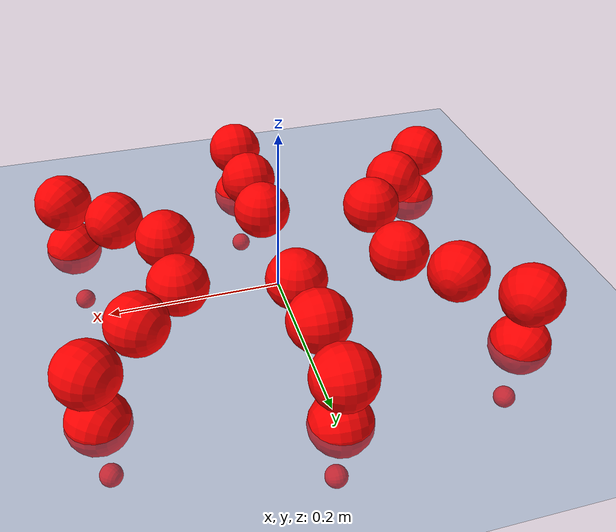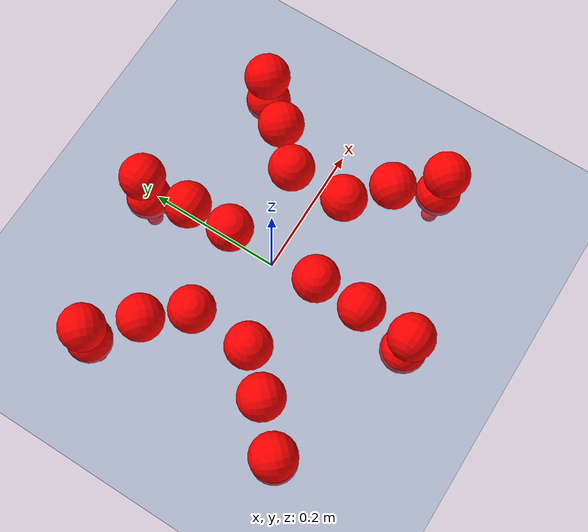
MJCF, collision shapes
<mujoco model="Golem">
  <compiler angle="radian" assetdir="assets" balanceinertia="true" inertiafromgeom="false"/>

  <option timestep="0.005" density="1.2" viscosity="2e-05"/>

  <size nkey="1"/>

  <visual>
    <quality shadowsize="8192"/>
    <map shadowclip="0.5"/>
  </visual>

  <default>
    <default class="/">
      <joint armature="0.01" damping="0.01" frictionloss="0.01"/>
      <geom contype="0" conaffinity="0" group="1" solref="-1000 -80"/>
      <site size="0.01 0.005 0.005" group="5"/>
      <general forcelimited="true" biastype="affine" gainprm="25" biasprm="0 -25 -0.5"/>
      <default class="visual">
        <geom type="mesh" group="2"/>
      </default>
      <default class="collision">
        <geom group="3"/>
      </default>
      <default class="foot">
        <geom size="0.01 0 0" condim="6" group="4" priority="1" solimp="0.015 1 0.01"/>
      </default>
      <default class="reward_collision_sphere">
        <geom group="5" rgba="1 0 0 1"/>
      </default>
    </default>
  </default>

  <asset>
    <texture type="skybox" colorspace="auto" name="//unnamed_texture_0" builtin="gradient" rgb1="0.95 0.95 0.95" rgb2="0.95 0.95 0.95" width="100" height="600"/>
    <texture type="2d" colorspace="auto" name="texplane" builtin="checker" rgb1="0.345 0.575 0.748" rgb2="0.345 0.575 0.748" markrgb="1 1 1" width="512" height="512"/>
    <material name="MatPlane" class="/" texture="texplane" texuniform="true" texrepeat="2 2" specular="0.9"/>
    <mesh name="body" class="/" file="body.stl" scale="0.001 0.001 0.001"/>
    <mesh name="coxa" class="/" file="coxa.stl" scale="0.001 0.001 0.001"/>
    <mesh name="femur" class="/" file="femur.stl" scale="0.001 0.001 0.001"/>
    <mesh name="tibia" class="/" file="tibia.stl" scale="0.001 0.001 0.001"/>
    <mesh name="tarsus" class="/" file="tarsus.stl" scale="0.001 0.001 0.001"/>
  </asset>

  <worldbody>
    <geom name="floor" class="/" size="100 100 0.125" type="plane" group="0" material="MatPlane"/>
    <light name="toplight_shadow" class="/" pos="0 0 5" dir="0.0990148 0.0990148 -0.990148" type="directional" ambient="0.04 0.04 0.04" diffuse="0.55 0.55 0.55" specular="0.12 0.12 0.12"/>
    <light name="toplight_fill" class="/" pos="0 0 5" dir="0.0990148 0.0990148 -0.990148" type="directional" castshadow="false" ambient="0.04 0.04 0.04" diffuse="0.3 0.3 0.3" specular="0.08 0.08 0.08"/>
    <body name="trunk" pos="-0.00106193 1.10877e-05 -0.00272814" quat="1 7.95206e-05 0.000391539 0.000434686">
      <inertial pos="0.00063733 0.00223122 -0.00524146" quat="0.999993 -0.00353361 -0.000718956 -0.00087682" mass="2.37975" diaginertia="0.00361428 0.00223946 0.011152"/>
      <joint name="//unnamed_joint_0" type="free"/>
      <geom name="//unnamed_geom_1" class="/" pos="0 0 0.0650556" quat="1 0 0 0" type="mesh" rgba="0.9 0.9 0.9 1" mesh="body"/>
      <site name="imu" class="/" pos="0.100372 -0.000657747 0.115354" size="0.00855605"/>
      <camera name="track" class="/" pos="0 -1.47918 0" quat="0.707107 0.707107 0 0" mode="trackcom"/>
      <camera name="ego_camera" class="/" pos="0.105395 0 0.101649" quat="-0.5 -0.5 0.5 0.5"/>
      <body name="coxa_RR" pos="-0.146482 -0.0620674 0.0650335" quat="0.381815 -0.000432985 0.000594368 -0.924239">
        <inertial pos="-0.00269681 -0.00192811 -0.000471168" quat="0.999905 -0.00106034 0.0136081 0.00172216" mass="0.125729" diaginertia="0.00348374 0.00217927 0.0104498"/>
        <joint name="coxa_joint_RR" class="/" pos="0 0 0" axis="0.00698352 0.00117906 -0.999975" stiffness="0.00017127" range="-3.16244 3.11735" armature="0.00863906" damping="0.0145178" frictionloss="0.00973377"/>
        <geom name="//unnamed_geom_2" class="/" type="mesh" rgba="0.2 0.2 0.2 1" mesh="coxa"/>
        <geom name="//unnamed_geom_3" class="reward_collision_sphere" size="0.0342242" pos="-0.024322 0 0"/>
        <body name="femur_RR" pos="0.0486016 0.0019719 -0.000107682" quat="0.499636 -0.499964 0.500173 0.500227">
          <inertial pos="0.000519335 -0.000801548 0.00269902" quat="1 -0.000129286 -7.04875e-05 0.00064485" mass="0.125435" diaginertia="0.00350111 0.00221644 0.0104964"/>
          <joint name="femur_joint_RR" class="/" pos="0 0 0" axis="0.0116799 -0.00587823 -0.999915" range="-3.1465 3.13357" armature="0.00804424" damping="0" frictionloss="0.00862753"/>
          <geom name="//unnamed_geom_4" class="/" type="mesh" rgba="0.9 0.9 0.9 1" mesh="femur"/>
          <geom name="//unnamed_geom_5" class="reward_collision_sphere" size="0.0342242"/>
          <body name="tibia_RR" pos="0.00111783 -0.0804137 -0.00148513" quat="2.19485e-05 1 -5.46448e-06 2.36807e-05">
            <inertial pos="-0.00117934 0.0028224 -0.00273674" quat="0.999905 -0.0133242 0.00276973 0.0022578" mass="0.123897" diaginertia="0.00332493 0.00218818 0.0105288"/>
            <joint name="tibia_joint_RR" class="/" pos="0 0 0" axis="0.00110887 -0.00268119 0.999996" stiffness="0.000691121" range="-3.13986 3.09018" armature="0.00837765" damping="0.0113878" frictionloss="0.00813316"/>
            <geom name="//unnamed_geom_6" class="/" type="mesh" rgba="0.2 0.2 0.2 1" mesh="tibia"/>
            <geom name="//unnamed_geom_7" class="reward_collision_sphere" size="0.0342242"/>
            <body name="tarsus_RR" pos="0.0729373 -0.00269476 -0.00243313" quat="0.999999 0.00104053 0.000510169 0.000791033">
              <inertial pos="0.0486675 -0.00229523 0.000660024" quat="0.498102 0.497159 0.501668 0.503048" mass="0.123807" diaginertia="0.00351736 0.00234032 0.011166"/>
              <joint name="tarsus_joint_RR" class="/" pos="0 0 0" axis="-0.000452619 -0.00271575 0.999996" range="-3.14076 3.15348" armature="0.00842075" damping="0" frictionloss="0.00901749"/>
              <geom name="//unnamed_geom_8" class="/" type="mesh" rgba="0.9 0.9 0.9 1" mesh="tarsus"/>
              <geom name="foot_1" class="foot" size="0.00872952" pos="0.090802 0 0" quat="0 -0.707107 0 0.707107"/>
              <geom name="//unnamed_geom_10" class="reward_collision_sphere" size="0.0342242"/>
              <geom name="//unnamed_geom_11" class="reward_collision_sphere" size="0.0128341" pos="0.0871537 0 0"/>
              <site name="foot_1" class="foot" pos="0.090802 0 0" quat="0 -0.707107 0 0.707107" size="0.00855605"/>
            </body>
          </body>
        </body>
      </body>
      <body name="coxa_RM" pos="0.00195779 -0.0969171 0.0634798" quat="0.70744 0.000443809 0.000323615 -0.706774">
        <inertial pos="-7.9456e-05 -0.00194132 -0.00218433" quat="0.999999 -0.000157733 -0.00162165 -3.82994e-05" mass="0.120796" diaginertia="0.00328296 0.00206899 0.0105748"/>
        <joint name="coxa_joint_RM" class="/" pos="0 0 0" axis="-0.0036112 0.00192698 -0.999992" stiffness="0.00252432" range="-3.13871 3.16016" armature="0.00814187" damping="0.0176551" frictionloss="0.00944082"/>
        <geom name="//unnamed_geom_12" class="/" type="mesh" rgba="0.2 0.2 0.2 1" mesh="coxa"/>
        <geom name="//unnamed_geom_13" class="reward_collision_sphere" size="0.0342242" pos="-0.024322 0 0"/>
        <body name="femur_RM" pos="0.0499764 -0.000968802 -0.000538301" quat="0.499251 -0.500256 0.49981 0.500681">
          <inertial pos="0.000848668 -0.00219892 0.000253002" quat="0.99991 0.00278133 0.0112347 0.00677277" mass="0.124581" diaginertia="0.00362034 0.0021823 0.0108318"/>
          <joint name="femur_joint_RM" class="/" pos="0 0 0" axis="0.000876064 -0.000414865 -1" stiffness="0.000658837" range="-3.1945 3.19391" armature="0.00968231" damping="0.026974" frictionloss="0.0084947"/>
          <geom name="//unnamed_geom_14" class="/" type="mesh" rgba="0.9 0.9 0.9 1" mesh="femur"/>
          <geom name="//unnamed_geom_15" class="reward_collision_sphere" size="0.0342242"/>
          <body name="tibia_RM" pos="-0.000553818 -0.0803022 -0.000537675" quat="1.75257e-05 1 -1.31294e-05 1.5667e-05">
            <inertial pos="-2.84402e-05 0.000155329 -0.00266291" quat="0.999909 -0.00592781 0.00987226 0.00698796" mass="0.116831" diaginertia="0.00339962 0.00213711 0.0108434"/>
            <joint name="tibia_joint_RM" class="/" pos="0 0 0" axis="-0.0038084 0.00356396 0.999986" stiffness="0.00811978" range="-3.19391 3.08465" armature="0.00734627" damping="0" frictionloss="0.00851725"/>
            <geom name="//unnamed_geom_16" class="/" type="mesh" rgba="0.2 0.2 0.2 1" mesh="tibia"/>
            <geom name="//unnamed_geom_17" class="reward_collision_sphere" size="0.0342242"/>
            <body name="tarsus_RM" pos="0.0712461 -0.00188509 0.00307983" quat="1 0.000414456 0.000158787 5.29925e-05">
              <inertial pos="0.047901 0.000780374 -0.000558637" quat="0.497818 0.501539 0.491554 0.508931" mass="0.124988" diaginertia="0.00354024 0.00221421 0.0109611"/>
              <joint name="tarsus_joint_RM" class="/" pos="0 0 0" axis="-0.000331038 0.00525555 0.999986" range="-3.14919 3.18465" armature="0.00860969" damping="0" frictionloss="0.00899734"/>
              <geom name="//unnamed_geom_18" class="/" type="mesh" rgba="0.9 0.9 0.9 1" mesh="tarsus"/>
              <geom name="foot_2" class="foot" size="0.00768575" pos="0.090802 0 0" quat="0 -0.707107 0 0.707107"/>
              <geom name="//unnamed_geom_20" class="reward_collision_sphere" size="0.0342242"/>
              <geom name="//unnamed_geom_21" class="reward_collision_sphere" size="0.0128341" pos="0.0871537 0 0"/>
              <site name="foot_2" class="foot" pos="0.090802 0 0" quat="0 -0.707107 0 0.707107" size="0.00855605"/>
            </body>
          </body>
        </body>
      </body>
      <body name="coxa_RF" pos="0.142793 -0.0603374 0.0642575" quat="0.923974 -0.000685351 -0.00116224 -0.382453">
        <inertial pos="0.00273913 -0.00274423 0.0013589" quat="0.999991 -0.00044538 -0.00347726 0.00243823" mass="0.126785" diaginertia="0.00361873 0.00222672 0.0108169"/>
        <joint name="coxa_joint_RF" class="/" pos="0 0 0" axis="-0.00849057 -0.00611881 -0.999945" range="-3.13511 3.16104" armature="0.00843322" damping="0" frictionloss="0.00832412"/>
        <geom name="//unnamed_geom_22" class="/" type="mesh" rgba="0.2 0.2 0.2 1" mesh="coxa"/>
        <geom name="//unnamed_geom_23" class="reward_collision_sphere" size="0.0342242" pos="-0.024322 0 0"/>
        <body name="femur_RF" pos="0.0482815 0.00196212 0.00210868" quat="0.499785 -0.500876 0.500099 0.499239">
          <inertial pos="-0.000843608 0.00084248 -0.000858293" quat="0.99996 -0.0023228 0.0040402 -0.00759859" mass="0.123377" diaginertia="0.00346085 0.00215666 0.0107473"/>
          <joint name="femur_joint_RF" class="/" pos="0 0 0" axis="0.00123972 0.00136905 -0.999998" range="-3.11283 3.17124" armature="0.00910553" damping="0.00895093" frictionloss="0.00841653"/>
          <geom name="//unnamed_geom_24" class="/" type="mesh" rgba="0.9 0.9 0.9 1" mesh="femur"/>
          <geom name="//unnamed_geom_25" class="reward_collision_sphere" size="0.0342242"/>
          <body name="tibia_RF" pos="0.00176196 -0.0805077 -0.000549536" quat="0.000571008 1 1.86385e-05 -3.37459e-05">
            <inertial pos="0.00102242 -0.00254772 0.000140491" quat="0.999993 0.00370871 7.2458e-05 5.92816e-05" mass="0.122872" diaginertia="0.00340244 0.00214 0.0108842"/>
            <joint name="tibia_joint_RF" class="/" pos="0 0 0" axis="0.00139998 -0.00197509 0.999997" stiffness="0.00636237" range="-3.14668 3.08322" armature="0.00860464" damping="0" frictionloss="0.00850874"/>
            <geom name="//unnamed_geom_26" class="/" type="mesh" rgba="0.2 0.2 0.2 1" mesh="tibia"/>
            <geom name="//unnamed_geom_27" class="reward_collision_sphere" size="0.0342242"/>
            <body name="tarsus_RF" pos="0.0684267 -0.0030481 -0.000173933" quat="0.999999 0.000292301 0.00111213 -0.000156149">
              <inertial pos="0.0481776 -2.1169e-05 -0.000845996" quat="0.499826 0.500101 0.500077 0.499996" mass="0.126608" diaginertia="0.003526 0.00228413 0.0108603"/>
              <joint name="tarsus_joint_RF" class="/" pos="0 0 0" axis="0.00131705 0.00300867 0.999995" range="-3.15131 3.15749" armature="0.00812249" damping="0" frictionloss="0.00899805"/>
              <geom name="//unnamed_geom_28" class="/" type="mesh" rgba="0.9 0.9 0.9 1" mesh="tarsus"/>
              <geom name="foot_3" class="foot" size="0.00840929" pos="0.090802 0 0" quat="0 -0.707107 0 0.707107"/>
              <geom name="//unnamed_geom_30" class="reward_collision_sphere" size="0.0342242"/>
              <geom name="//unnamed_geom_31" class="reward_collision_sphere" size="0.0128341" pos="0.0871537 0 0"/>
              <site name="foot_3" class="foot" pos="0.090802 0 0" quat="0 -0.707107 0 0.707107" size="0.00855605"/>
            </body>
          </body>
        </body>
      </body>
      <body name="coxa_LR" pos="-0.144695 0.0663157 0.063319" quat="0.382592 -5.59741e-06 -3.25543e-05 0.923917">
        <inertial pos="0.000535861 -0.00055766 -0.00217832" quat="0.999927 -0.000831356 0.00689177 -0.00984615" mass="0.120345" diaginertia="0.00339438 0.00221307 0.0106375"/>
        <joint name="coxa_joint_LR" class="/" pos="0 0 0" axis="-0.00794253 -0.00504829 -0.999956" stiffness="0.0090214" range="-3.14552 3.16049" armature="0.00874129" damping="0.0151344" frictionloss="0.00966837"/>
        <geom name="//unnamed_geom_32" class="/" type="mesh" rgba="0.2 0.2 0.2 1" mesh="coxa"/>
        <geom name="//unnamed_geom_33" class="reward_collision_sphere" size="0.0342242" pos="-0.024322 0 0"/>
        <body name="femur_LR" pos="0.0468689 -0.00352841 0.000905493" quat="0.499823 -0.500573 0.500403 0.4992">
          <inertial pos="0.000184946 -0.00104354 -0.00275078" quat="0.999974 -0.00174463 -0.00129618 0.00690929" mass="0.123272" diaginertia="0.00337858 0.0021339 0.0104057"/>
          <joint name="femur_joint_LR" class="/" pos="0 0 0" axis="0.00584782 0.0109773 0.999923" range="-3.14215 3.142" armature="0.00942038" damping="0.013566" frictionloss="0.00898774"/>
          <geom name="//unnamed_geom_34" class="/" type="mesh" rgba="0.9 0.9 0.9 1" mesh="femur"/>
          <geom name="//unnamed_geom_35" class="reward_collision_sphere" size="0.0342242"/>
          <body name="tibia_LR" pos="-0.00247188 -0.0808473 -0.00305983" quat="0.000107373 1 9.09607e-05 0.000164522">
            <inertial pos="0.000681112 0.00285508 0.000327178" quat="0.999991 -0.00157784 0.00377584 0.00129946" mass="0.128409" diaginertia="0.00345861 0.00224868 0.0114773"/>
            <joint name="tibia_joint_LR" class="/" pos="0 0 0" axis="-0.0073192 -0.00834733 -0.999938" stiffness="0.00134944" range="-3.08693 3.09274" armature="0.00954489" damping="0" frictionloss="0.00953681"/>
            <geom name="//unnamed_geom_36" class="/" type="mesh" rgba="0.2 0.2 0.2 1" mesh="tibia"/>
            <geom name="//unnamed_geom_37" class="reward_collision_sphere" size="0.0342242"/>
            <body name="tarsus_LR" pos="0.0709707 0.000884159 -1.29858e-05" quat="1 0.000101813 -0.000237231 0.000234937">
              <inertial pos="0.0514254 0.001407 -0.00207437" quat="0.500004 0.499631 0.500584 0.49978" mass="0.123961" diaginertia="0.00358504 0.00222928 0.0106506"/>
              <joint name="tarsus_joint_LR" class="/" pos="0 0 0" axis="-0.0032536 0.00465837 -0.999984" range="-3.10098 3.10528" armature="0.00743811" damping="0.0183851" frictionloss="0.0085754"/>
              <geom name="//unnamed_geom_38" class="/" type="mesh" rgba="0.9 0.9 0.9 1" mesh="tarsus"/>
              <geom name="foot_4" class="foot" size="0.00863354" pos="0.090802 0 0" quat="0.707107 0 -0.707107 0"/>
              <geom name="//unnamed_geom_40" class="reward_collision_sphere" size="0.0342242"/>
              <geom name="//unnamed_geom_41" class="reward_collision_sphere" size="0.0128341" pos="0.0871537 0 0"/>
              <site name="foot_4" class="foot" pos="0.090802 0 0" quat="0.707107 0 -0.707107 0" size="0.00855605"/>
            </body>
          </body>
        </body>
      </body>
      <body name="coxa_LM" pos="1.66459e-06 0.0935993 0.0657884" quat="0.707225 -0.000175977 -1.43849e-05 0.706988">
        <inertial pos="0.000174546 -0.00276327 0.00240884" quat="0.999981 0.00102421 -0.00167528 0.00578299" mass="0.129736" diaginertia="0.00353284 0.00224034 0.0109913"/>
        <joint name="coxa_joint_LM" class="/" pos="0 0 0" axis="7.55709e-06 -0.0132928 -0.999912" range="-3.13641 3.13632" armature="0.00745256" damping="0.0145161" frictionloss="0.00864886"/>
        <geom name="//unnamed_geom_42" class="/" type="mesh" rgba="0.2 0.2 0.2 1" mesh="coxa"/>
        <geom name="//unnamed_geom_43" class="reward_collision_sphere" size="0.0342242" pos="-0.024322 0 0"/>
        <body name="femur_LM" pos="0.045194 0.00292791 0.000740166" quat="0.499888 -0.500042 0.49991 0.50016">
          <inertial pos="-0.00256371 0.00174481 -0.00219321" quat="1 -0.00035347 0.000220203 -0.00049919" mass="0.122233" diaginertia="0.00339178 0.00218296 0.010388"/>
          <joint name="femur_joint_LM" class="/" pos="0 0 0" axis="-0.0155078 0.00259425 0.999876" stiffness="0.00892152" range="-3.14126 3.14299" armature="0.00897418" damping="0" frictionloss="0.00968415"/>
          <geom name="//unnamed_geom_44" class="/" type="mesh" rgba="0.9 0.9 0.9 1" mesh="femur"/>
          <geom name="//unnamed_geom_45" class="reward_collision_sphere" size="0.0342242"/>
          <body name="tibia_LM" pos="0.000959049 -0.0791977 -0.000720481" quat="-4.98192e-05 1 -7.5156e-05 0.00017201">
            <inertial pos="-0.00104341 -0.000282928 0.00255255" quat="0.999913 0.000178695 -0.0125031 0.00424105" mass="0.122685" diaginertia="0.00350837 0.0022518 0.0106102"/>
            <joint name="tibia_joint_LM" class="/" pos="0 0 0" axis="0.0023008 -0.00199013 -0.999995" stiffness="0.00816067" range="-3.15819 3.19424" armature="0.0080046" damping="0" frictionloss="0.00894577"/>
            <geom name="//unnamed_geom_46" class="/" type="mesh" rgba="0.2 0.2 0.2 1" mesh="tibia"/>
            <geom name="//unnamed_geom_47" class="reward_collision_sphere" size="0.0342242"/>
            <body name="tarsus_LM" pos="0.0708092 -0.00340931 -0.00143466" quat="1 6.46672e-06 4.56273e-06 5.0592e-06">
              <inertial pos="0.0513733 0.000714379 0.000162634" quat="0.499987 0.499641 0.50019 0.500181" mass="0.124892" diaginertia="0.00353824 0.0022302 0.0112167"/>
              <joint name="tarsus_joint_LM" class="/" pos="0 0 0" axis="-0.00156159 -0.00292632 -0.999994" range="-3.13599 3.13156" armature="0.00881061" damping="0" frictionloss="0.00879079"/>
              <geom name="//unnamed_geom_48" class="/" type="mesh" rgba="0.9 0.9 0.9 1" mesh="tarsus"/>
              <geom name="foot_5" class="foot" size="0.00848862" pos="0.090802 0 0" quat="0.707107 0 -0.707107 0"/>
              <geom name="//unnamed_geom_50" class="reward_collision_sphere" size="0.0342242"/>
              <geom name="//unnamed_geom_51" class="reward_collision_sphere" size="0.0128341" pos="0.0871537 0 0"/>
              <site name="foot_5" class="foot" pos="0.090802 0 0" quat="0.707107 0 -0.707107 0" size="0.00855605"/>
            </body>
          </body>
        </body>
      </body>
      <body name="coxa_LF" pos="0.141738 0.0615134 0.0654622" quat="0.923736 0.000139487 -0.000353257 0.383029">
        <inertial pos="0.00277828 0.000385672 0.000304011" quat="0.999908 -0.00776929 -0.00523642 -0.00983884" mass="0.125831" diaginertia="0.00361196 0.00219631 0.0108526"/>
        <joint name="coxa_joint_LF" class="/" pos="0 0 0" axis="-0.000653817 0.0013179 -0.999999" range="-3.1606 3.08314" armature="0.00799084" damping="0.0123966" frictionloss="0.00873805"/>
        <geom name="//unnamed_geom_52" class="/" type="mesh" rgba="0.2 0.2 0.2 1" mesh="coxa"/>
        <geom name="//unnamed_geom_53" class="reward_collision_sphere" size="0.0342242" pos="-0.024322 0 0"/>
        <body name="femur_LF" pos="0.0460567 -0.000689052 -0.000195711" quat="0.500129 -0.499996 0.500066 0.49981">
          <inertial pos="-0.00273269 0.00230155 -0.000667953" quat="0.999995 0.00079066 0.00171461 0.00249149" mass="0.125564" diaginertia="0.00338337 0.0022026 0.0108781"/>
          <joint name="femur_joint_LF" class="/" pos="0 0 0" axis="0.00907899 -0.0117645 0.99989" range="-3.19511 3.13546" armature="0.00848267" damping="0" frictionloss="0.00859861"/>
          <geom name="//unnamed_geom_54" class="/" type="mesh" rgba="0.9 0.9 0.9 1" mesh="femur"/>
          <geom name="//unnamed_geom_55" class="reward_collision_sphere" size="0.0342242"/>
          <body name="tibia_LF" pos="-0.00182229 -0.0793369 0.00293703" quat="-5.25254e-05 0.999999 0.000755742 0.000933266">
            <inertial pos="-0.00269174 1.11978e-05 0.000854875" quat="0.999933 -0.00556213 0.00907654 0.00457523" mass="0.129235" diaginertia="0.00339963 0.00218522 0.0108355"/>
            <joint name="tibia_joint_LF" class="/" pos="0 0 0" axis="0.00297375 0.00364854 -0.999989" stiffness="0.00230182" range="-3.13531 3.15698" armature="0.00865767" damping="0.00611944" frictionloss="0.0090146"/>
            <geom name="//unnamed_geom_56" class="/" type="mesh" rgba="0.2 0.2 0.2 1" mesh="tibia"/>
            <geom name="//unnamed_geom_57" class="reward_collision_sphere" size="0.0342242"/>
            <body name="tarsus_LF" pos="0.0716941 -0.00224852 0.00136453" quat="1 -0.000308659 -1.80586e-05 -0.000331886">
              <inertial pos="0.0472023 -0.00021456 -0.00258465" quat="0.497533 0.502418 0.501219 0.498815" mass="0.116965" diaginertia="0.00336352 0.00214423 0.0105162"/>
              <joint name="tarsus_joint_LF" class="/" pos="0 0 0" axis="-0.00555044 0.00226318 -0.999982" range="-3.12729 3.1676" armature="0.00806644" damping="0.023376" frictionloss="0.00872306"/>
              <geom name="//unnamed_geom_58" class="/" type="mesh" rgba="0.9 0.9 0.9 1" mesh="tarsus"/>
              <geom name="foot_6" class="foot" size="0.00930194" pos="0.090802 0 0" quat="0.707107 0 -0.707107 0"/>
              <geom name="//unnamed_geom_60" class="reward_collision_sphere" size="0.0342242"/>
              <geom name="//unnamed_geom_61" class="reward_collision_sphere" size="0.0128341" pos="0.0871537 0 0"/>
              <site name="foot_6" class="foot" pos="0.090802 0 0" quat="0.707107 0 -0.707107 0" size="0.00855605"/>
            </body>
          </body>
        </body>
      </body>
    </body>
  </worldbody>

  <contact>
    <pair class="/" geom1="floor" geom2="foot_1" name="//unnamed_contact_0"/>
    <pair class="/" geom1="floor" geom2="foot_2" name="//unnamed_contact_1"/>
    <pair class="/" geom1="floor" geom2="foot_3" name="//unnamed_contact_2"/>
    <pair class="/" geom1="floor" geom2="foot_4" name="//unnamed_contact_3"/>
    <pair class="/" geom1="floor" geom2="foot_5" name="//unnamed_contact_4"/>
    <pair class="/" geom1="floor" geom2="foot_6" name="//unnamed_contact_5"/>
  </contact>

  <actuator>
    <general name="coxa_joint_RR" class="/" joint="coxa_joint_RR" forcerange="-6.3189 6.3189" gainprm="20.7377" biasprm="0 -20.7377 -0.462338"/>
    <general name="femur_joint_RR" class="/" joint="femur_joint_RR" forcerange="-6.73263 6.73263" gainprm="20.7377" biasprm="0 -20.7377 -0.462338"/>
    <general name="tibia_joint_RR" class="/" joint="tibia_joint_RR" forcerange="-5.60152 5.60152" gainprm="20.7377" biasprm="0 -20.7377 -0.462338"/>
    <general name="tarsus_joint_RR" class="/" joint="tarsus_joint_RR" forcerange="-6.36819 6.36819" gainprm="20.7377" biasprm="0 -20.7377 -0.462338"/>
    <general name="coxa_joint_RM" class="/" joint="coxa_joint_RM" forcerange="-6.78049 6.78049" gainprm="20.7377" biasprm="0 -20.7377 -0.462338"/>
    <general name="femur_joint_RM" class="/" joint="femur_joint_RM" forcerange="-6.26037 6.26037" gainprm="20.7377" biasprm="0 -20.7377 -0.462338"/>
    <general name="tibia_joint_RM" class="/" joint="tibia_joint_RM" forcerange="-6.40267 6.40267" gainprm="20.7377" biasprm="0 -20.7377 -0.462338"/>
    <general name="tarsus_joint_RM" class="/" joint="tarsus_joint_RM" forcerange="-5.60041 5.60041" gainprm="20.7377" biasprm="0 -20.7377 -0.462338"/>
    <general name="coxa_joint_RF" class="/" joint="coxa_joint_RF" forcerange="-6.87733 6.87733" gainprm="20.7377" biasprm="0 -20.7377 -0.462338"/>
    <general name="femur_joint_RF" class="/" joint="femur_joint_RF" forcerange="-6.219 6.219" gainprm="20.7377" biasprm="0 -20.7377 -0.462338"/>
    <general name="tibia_joint_RF" class="/" joint="tibia_joint_RF" forcerange="-6.12013 6.12013" gainprm="20.7377" biasprm="0 -20.7377 -0.462338"/>
    <general name="tarsus_joint_RF" class="/" joint="tarsus_joint_RF" forcerange="-6.26334 6.26334" gainprm="20.7377" biasprm="0 -20.7377 -0.462338"/>
    <general name="coxa_joint_LR" class="/" joint="coxa_joint_LR" forcerange="-6.88652 6.88652" gainprm="20.7377" biasprm="0 -20.7377 -0.462338"/>
    <general name="femur_joint_LR" class="/" joint="femur_joint_LR" forcerange="-6.22608 6.22608" gainprm="20.7377" biasprm="0 -20.7377 -0.462338"/>
    <general name="tibia_joint_LR" class="/" joint="tibia_joint_LR" forcerange="-6.8353 6.8353" gainprm="20.7377" biasprm="0 -20.7377 -0.462338"/>
    <general name="tarsus_joint_LR" class="/" joint="tarsus_joint_LR" forcerange="-6.86822 6.86822" gainprm="20.7377" biasprm="0 -20.7377 -0.462338"/>
    <general name="coxa_joint_LM" class="/" joint="coxa_joint_LM" forcerange="-5.60344 5.60344" gainprm="20.7377" biasprm="0 -20.7377 -0.462338"/>
    <general name="femur_joint_LM" class="/" joint="femur_joint_LM" forcerange="-6.2006 6.2006" gainprm="20.7377" biasprm="0 -20.7377 -0.462338"/>
    <general name="tibia_joint_LM" class="/" joint="tibia_joint_LM" forcerange="-6.89151 6.89151" gainprm="20.7377" biasprm="0 -20.7377 -0.462338"/>
    <general name="tarsus_joint_LM" class="/" joint="tarsus_joint_LM" forcerange="-6.8049 6.8049" gainprm="20.7377" biasprm="0 -20.7377 -0.462338"/>
    <general name="coxa_joint_LF" class="/" joint="coxa_joint_LF" forcerange="-5.67175 5.67175" gainprm="20.7377" biasprm="0 -20.7377 -0.462338"/>
    <general name="femur_joint_LF" class="/" joint="femur_joint_LF" forcerange="-5.69209 5.69209" gainprm="20.7377" biasprm="0 -20.7377 -0.462338"/>
    <general name="tibia_joint_LF" class="/" joint="tibia_joint_LF" forcerange="-6.26344 6.26344" gainprm="20.7377" biasprm="0 -20.7377 -0.462338"/>
    <general name="tarsus_joint_LF" class="/" joint="tarsus_joint_LF" forcerange="-5.97618 5.97618" gainprm="20.7377" biasprm="0 -20.7377 -0.462338"/>
  </actuator>

  <sensor>
    <gyro site="imu" name="imu_angular_velocity"/>
    <velocimeter site="imu" name="imu_linear_velocity"/>
    <framelinvel objtype="site" objname="foot_1" name="foot_1_global_linear_velocity"/>
    <framelinvel objtype="site" objname="foot_2" name="foot_2_global_linear_velocity"/>
    <framelinvel objtype="site" objname="foot_3" name="foot_3_global_linear_velocity"/>
    <framelinvel objtype="site" objname="foot_4" name="foot_4_global_linear_velocity"/>
    <framelinvel objtype="site" objname="foot_5" name="foot_5_global_linear_velocity"/>
    <framelinvel objtype="site" objname="foot_6" name="foot_6_global_linear_velocity"/>
  </sensor>

  <keyframe>
    <key name="home" qpos="0 0 0.1457 1 0 0 0 0 0 0 0 0 0 0 0 0 0 0 0 0 0 0 0 0 0 0 0 0 0 0 0"/>
  </keyframe>
</mujoco>
